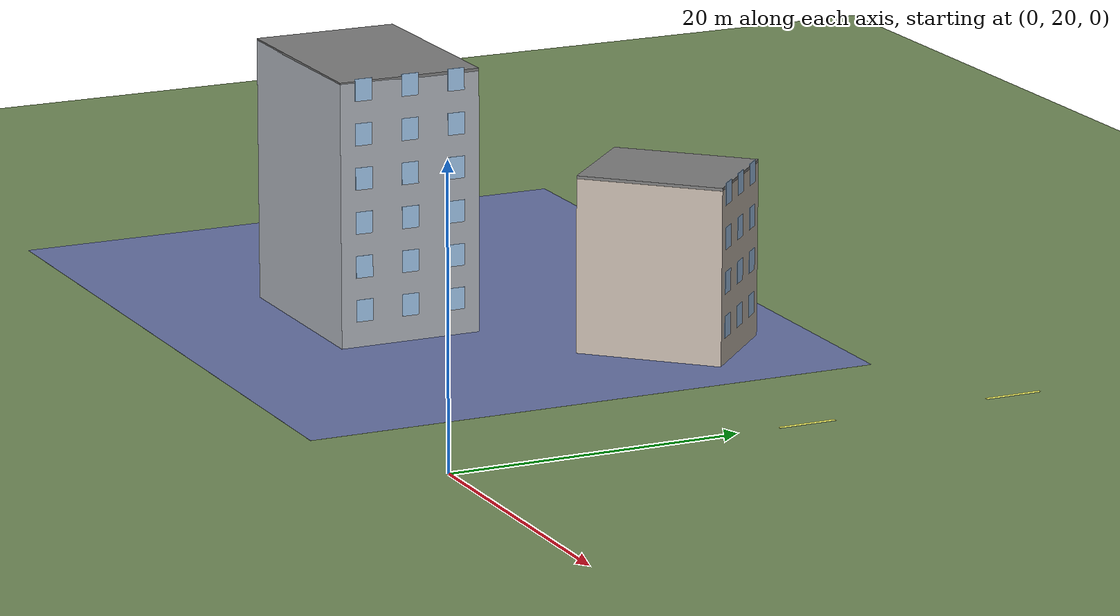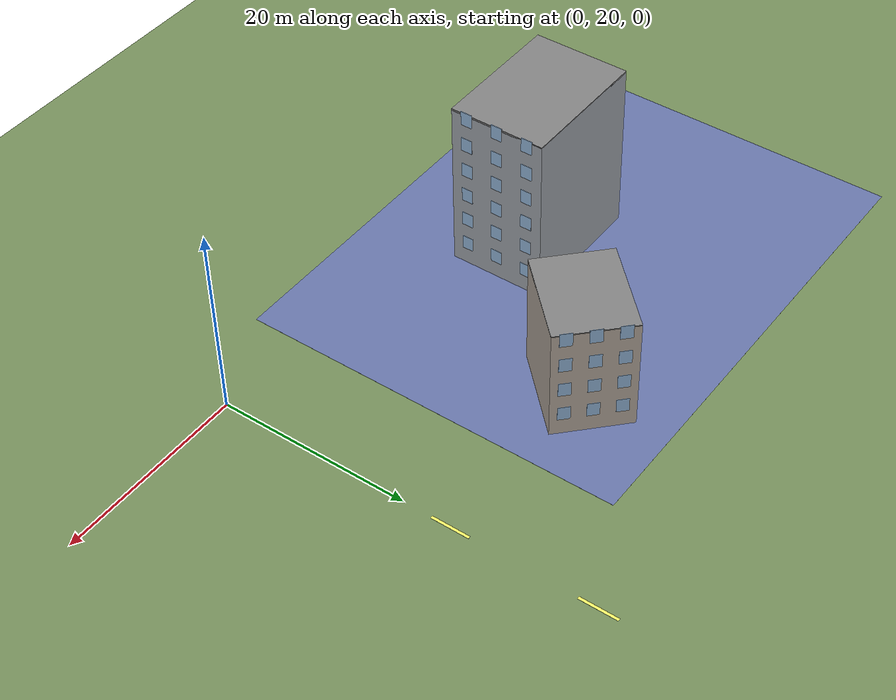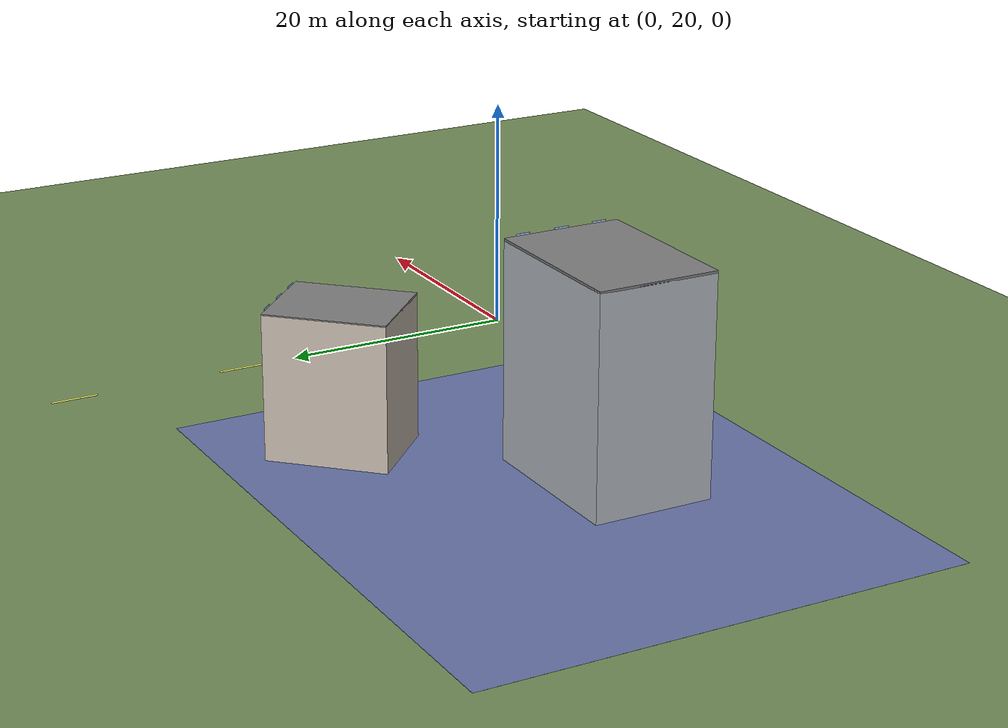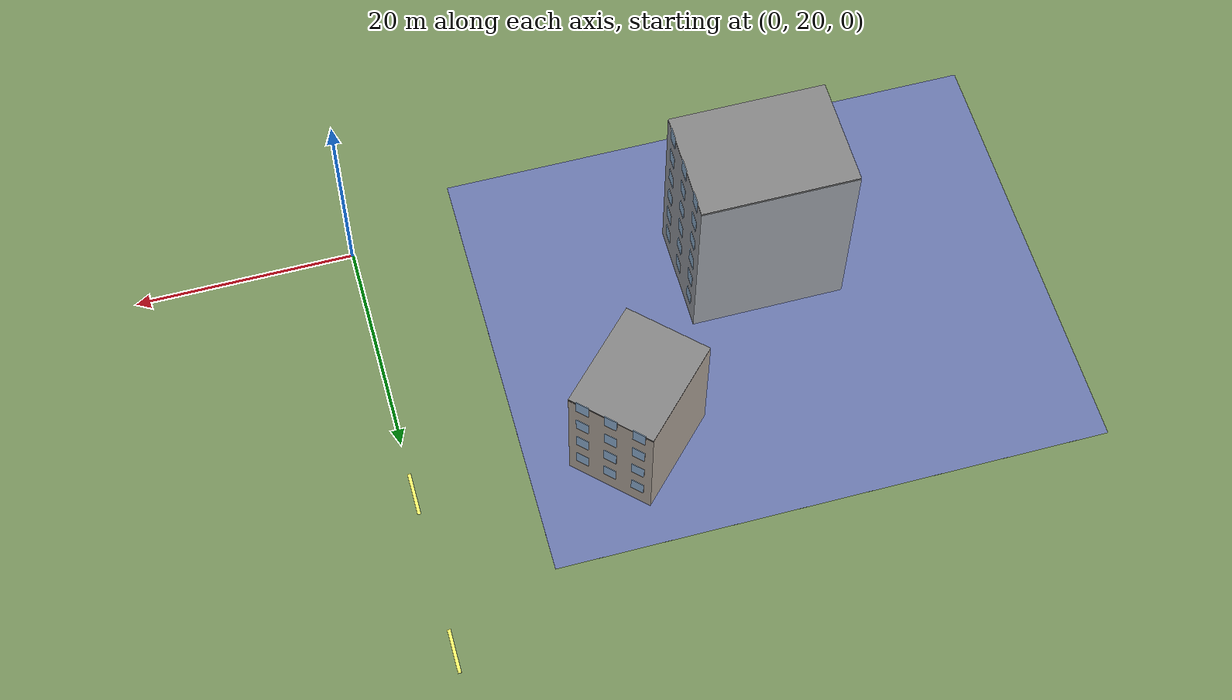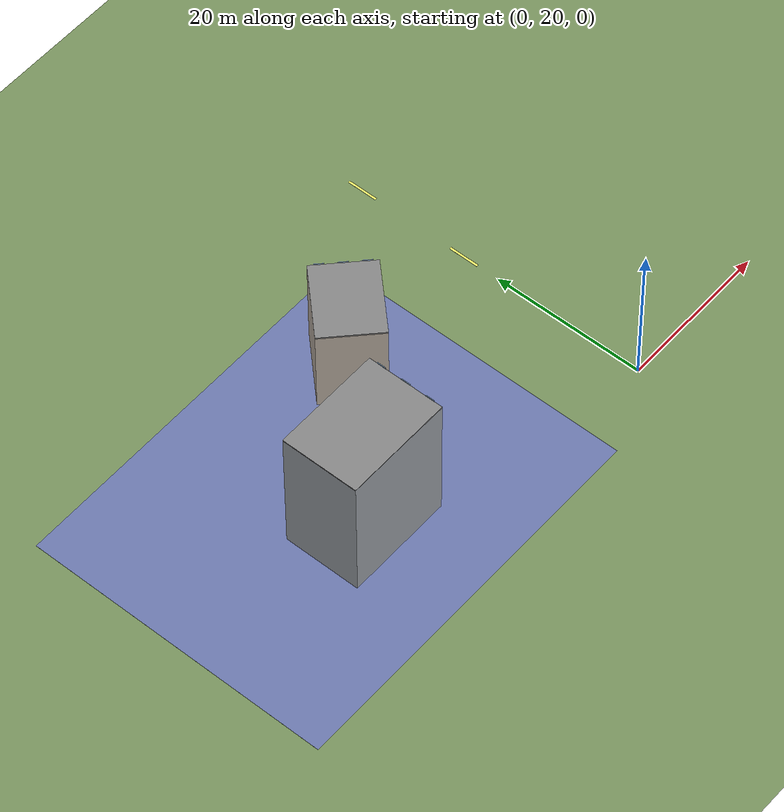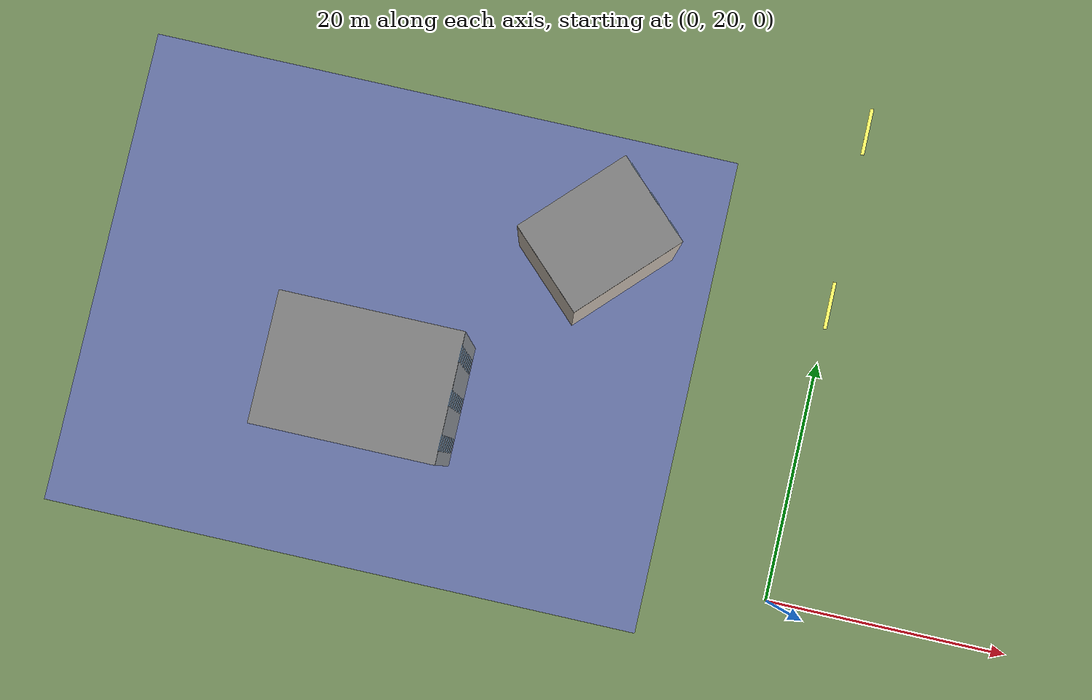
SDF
<sdf version="1.9">
 <world name="urban_rescue">
  <model name="ground">
   <static>true</static>
   <link name="l">
    <collision name="c"><geometry><plane><normal>0 0 1</normal><size>300 300</size></plane></geometry></collision>
    <visual name="v">
     <geometry><plane><normal>0 0 1</normal><size>300 300</size></plane></geometry>
     <material><ambient>0.4 0.5 0.3 1</ambient><diffuse>0.45 0.55 0.35 1</diffuse></material>
    </visual>
   </link>
  </model>
  <model name="lns8">
   <static>true</static>
   <pose>0 30 0.008 0 0 0</pose>
   <link name="l">
    <visual name="v">
     <geometry><box><size>0.3 4 0.005</size></box></geometry>
     <material>
      <ambient>0.95 0.95 0.3 1</ambient>
      <diffuse>1 1 0.4 1</diffuse>
      <specular>0.1 0.1 0.1 1</specular>
     </material>
    </visual>
   </link>
  </model>
  <model name="lns9">
   <static>true</static>
   <pose>0 45 0.008 0 0 0</pose>
   <link name="l">
    <visual name="v">
     <geometry><box><size>0.3 4 0.005</size></box></geometry>
     <material>
      <ambient>0.95 0.95 0.3 1</ambient>
      <diffuse>1 1 0.4 1</diffuse>
      <specular>0.1 0.1 0.1 1</specular>
     </material>
    </visual>
   </link>
  </model>
  <model name="lns10">
   <static>true</static>
   <pose>0 60 0.008 0 0 0</pose>
   <link name="l">
    <visual name="v">
     <geometry><box><size>0.3 4 0.005</size></box></geometry>
     <material>
      <ambient>0.95 0.95 0.3 1</ambient>
      <diffuse>1 1 0.4 1</diffuse>
      <specular>0.1 0.1 0.1 1</specular>
     </material>
    </visual>
   </link>
  </model>
  <model name="zb">
   <static>true</static>
   <pose>-35 35 0.012 0 0 0</pose>
   <link name="l">
    <visual name="v">
     <geometry><box><size>50 40 0.005</size></box></geometry>
     <material>
      <ambient>0.3 0.35 0.55 1</ambient>
      <diffuse>0.4 0.44999999999999996 0.65 1</diffuse>
      <specular>0.1 0.1 0.1 1</specular>
     </material>
    </visual>
   </link>
  </model>
  <model name="office1">
   <static>true</static>
   <pose>-35 30 0 0 0 0</pose>
   <link name="b">
    <visual name="w">
     <pose>0 0 9.0 0 0 0</pose>
     <geometry><box><size>14 10 18</size></box></geometry>
     <material>
      <ambient>0.6 0.62 0.65 1</ambient>
      <diffuse>0.7 0.72 0.75 1</diffuse>
      <specular>0.1 0.1 0.1 1</specular>
     </material>
    </visual>
    <visual name="r">
     <pose>0 0 18 0 0 0</pose>
     <geometry><box><size>14 10 0.2</size></box></geometry>
     <material>
      <ambient>0.4 0.4 0.4 1</ambient>
      <diffuse>0.5 0.5 0.5 1</diffuse>
      <specular>0.1 0.1 0.1 1</specular>
     </material>
    </visual>
    <visual name="f1w0">
     <pose>7.0 -3.3333333333333335 2.5 0 0 0</pose>
     <geometry><box><size>0.05 1.2 1.5</size></box></geometry>
     <material>
      <ambient>0.55 0.7 0.85 1</ambient>
      <diffuse>0.65 0.7999999999999999 0.95 1</diffuse>
      <specular>0.1 0.1 0.1 1</specular>
     </material>
    </visual>
    <visual name="f1w1">
     <pose>7.0 0 2.5 0 0 0</pose>
     <geometry><box><size>0.05 1.2 1.5</size></box></geometry>
     <material>
      <ambient>0.55 0.7 0.85 1</ambient>
      <diffuse>0.65 0.7999999999999999 0.95 1</diffuse>
      <specular>0.1 0.1 0.1 1</specular>
     </material>
    </visual>
    <visual name="f1w2">
     <pose>7.0 3.3333333333333335 2.5 0 0 0</pose>
     <geometry><box><size>0.05 1.2 1.5</size></box></geometry>
     <material>
      <ambient>0.55 0.7 0.85 1</ambient>
      <diffuse>0.65 0.7999999999999999 0.95 1</diffuse>
      <specular>0.1 0.1 0.1 1</specular>
     </material>
    </visual>
    <visual name="f2w0">
     <pose>7.0 -3.3333333333333335 5.5 0 0 0</pose>
     <geometry><box><size>0.05 1.2 1.5</size></box></geometry>
     <material>
      <ambient>0.55 0.7 0.85 1</ambient>
      <diffuse>0.65 0.7999999999999999 0.95 1</diffuse>
      <specular>0.1 0.1 0.1 1</specular>
     </material>
    </visual>
    <visual name="f2w1">
     <pose>7.0 0 5.5 0 0 0</pose>
     <geometry><box><size>0.05 1.2 1.5</size></box></geometry>
     <material>
      <ambient>0.55 0.7 0.85 1</ambient>
      <diffuse>0.65 0.7999999999999999 0.95 1</diffuse>
      <specular>0.1 0.1 0.1 1</specular>
     </material>
    </visual>
    <visual name="f2w2">
     <pose>7.0 3.3333333333333335 5.5 0 0 0</pose>
     <geometry><box><size>0.05 1.2 1.5</size></box></geometry>
     <material>
      <ambient>0.55 0.7 0.85 1</ambient>
      <diffuse>0.65 0.7999999999999999 0.95 1</diffuse>
      <specular>0.1 0.1 0.1 1</specular>
     </material>
    </visual>
    <visual name="f3w0">
     <pose>7.0 -3.3333333333333335 8.5 0 0 0</pose>
     <geometry><box><size>0.05 1.2 1.5</size></box></geometry>
     <material>
      <ambient>0.55 0.7 0.85 1</ambient>
      <diffuse>0.65 0.7999999999999999 0.95 1</diffuse>
      <specular>0.1 0.1 0.1 1</specular>
     </material>
    </visual>
    <visual name="f3w1">
     <pose>7.0 0 8.5 0 0 0</pose>
     <geometry><box><size>0.05 1.2 1.5</size></box></geometry>
     <material>
      <ambient>0.55 0.7 0.85 1</ambient>
      <diffuse>0.65 0.7999999999999999 0.95 1</diffuse>
      <specular>0.1 0.1 0.1 1</specular>
     </material>
    </visual>
    <visual name="f3w2">
     <pose>7.0 3.3333333333333335 8.5 0 0 0</pose>
     <geometry><box><size>0.05 1.2 1.5</size></box></geometry>
     <material>
      <ambient>0.55 0.7 0.85 1</ambient>
      <diffuse>0.65 0.7999999999999999 0.95 1</diffuse>
      <specular>0.1 0.1 0.1 1</specular>
     </material>
    </visual>
    <visual name="f4w0">
     <pose>7.0 -3.3333333333333335 11.5 0 0 0</pose>
     <geometry><box><size>0.05 1.2 1.5</size></box></geometry>
     <material>
      <ambient>0.55 0.7 0.85 1</ambient>
      <diffuse>0.65 0.7999999999999999 0.95 1</diffuse>
      <specular>0.1 0.1 0.1 1</specular>
     </material>
    </visual>
    <visual name="f4w1">
     <pose>7.0 0 11.5 0 0 0</pose>
     <geometry><box><size>0.05 1.2 1.5</size></box></geometry>
     <material>
      <ambient>0.55 0.7 0.85 1</ambient>
      <diffuse>0.65 0.7999999999999999 0.95 1</diffuse>
      <specular>0.1 0.1 0.1 1</specular>
     </material>
    </visual>
    <visual name="f4w2">
     <pose>7.0 3.3333333333333335 11.5 0 0 0</pose>
     <geometry><box><size>0.05 1.2 1.5</size></box></geometry>
     <material>
      <ambient>0.55 0.7 0.85 1</ambient>
      <diffuse>0.65 0.7999999999999999 0.95 1</diffuse>
      <specular>0.1 0.1 0.1 1</specular>
     </material>
    </visual>
    <visual name="f5w0">
     <pose>7.0 -3.3333333333333335 14.5 0 0 0</pose>
     <geometry><box><size>0.05 1.2 1.5</size></box></geometry>
     <material>
      <ambient>0.55 0.7 0.85 1</ambient>
      <diffuse>0.65 0.7999999999999999 0.95 1</diffuse>
      <specular>0.1 0.1 0.1 1</specular>
     </material>
    </visual>
    <visual name="f5w1">
     <pose>7.0 0 14.5 0 0 0</pose>
     <geometry><box><size>0.05 1.2 1.5</size></box></geometry>
     <material>
      <ambient>0.55 0.7 0.85 1</ambient>
      <diffuse>0.65 0.7999999999999999 0.95 1</diffuse>
      <specular>0.1 0.1 0.1 1</specular>
     </material>
    </visual>
    <visual name="f5w2">
     <pose>7.0 3.3333333333333335 14.5 0 0 0</pose>
     <geometry><box><size>0.05 1.2 1.5</size></box></geometry>
     <material>
      <ambient>0.55 0.7 0.85 1</ambient>
      <diffuse>0.65 0.7999999999999999 0.95 1</diffuse>
      <specular>0.1 0.1 0.1 1</specular>
     </material>
    </visual>
    <visual name="f6w0">
     <pose>7.0 -3.3333333333333335 17.5 0 0 0</pose>
     <geometry><box><size>0.05 1.2 1.5</size></box></geometry>
     <material>
      <ambient>0.55 0.7 0.85 1</ambient>
      <diffuse>0.65 0.7999999999999999 0.95 1</diffuse>
      <specular>0.1 0.1 0.1 1</specular>
     </material>
    </visual>
    <visual name="f6w1">
     <pose>7.0 0 17.5 0 0 0</pose>
     <geometry><box><size>0.05 1.2 1.5</size></box></geometry>
     <material>
      <ambient>0.55 0.7 0.85 1</ambient>
      <diffuse>0.65 0.7999999999999999 0.95 1</diffuse>
      <specular>0.1 0.1 0.1 1</specular>
     </material>
    </visual>
    <visual name="f6w2">
     <pose>7.0 3.3333333333333335 17.5 0 0 0</pose>
     <geometry><box><size>0.05 1.2 1.5</size></box></geometry>
     <material>
      <ambient>0.55 0.7 0.85 1</ambient>
      <diffuse>0.65 0.7999999999999999 0.95 1</diffuse>
      <specular>0.1 0.1 0.1 1</specular>
     </material>
    </visual>
    <collision name="c">
     <pose>0 0 9.0 0 0 0</pose>
     <geometry><box><size>14 10 18</size></box></geometry>
    </collision>
   </link>
  </model>
  <model name="apart1">
   <static>true</static>
   <pose>-20 45 0 0 0 0.8</pose>
   <link name="b">
    <visual name="w">
     <pose>0 0 6.0 0 0 0</pose>
     <geometry><box><size>10 8 12</size></box></geometry>
     <material>
      <ambient>0.7 0.65 0.6 1</ambient>
      <diffuse>0.7999999999999999 0.75 0.7 1</diffuse>
      <specular>0.1 0.1 0.1 1</specular>
     </material>
    </visual>
    <visual name="r">
     <pose>0 0 12 0 0 0</pose>
     <geometry><box><size>10 8 0.2</size></box></geometry>
     <material>
      <ambient>0.4 0.4 0.4 1</ambient>
      <diffuse>0.5 0.5 0.5 1</diffuse>
      <specular>0.1 0.1 0.1 1</specular>
     </material>
    </visual>
    <visual name="f1w0">
     <pose>5.0 -2.6666666666666665 2.5 0 0 0</pose>
     <geometry><box><size>0.05 1.2 1.5</size></box></geometry>
     <material>
      <ambient>0.55 0.7 0.85 1</ambient>
      <diffuse>0.65 0.7999999999999999 0.95 1</diffuse>
      <specular>0.1 0.1 0.1 1</specular>
     </material>
    </visual>
    <visual name="f1w1">
     <pose>5.0 0 2.5 0 0 0</pose>
     <geometry><box><size>0.05 1.2 1.5</size></box></geometry>
     <material>
      <ambient>0.55 0.7 0.85 1</ambient>
      <diffuse>0.65 0.7999999999999999 0.95 1</diffuse>
      <specular>0.1 0.1 0.1 1</specular>
     </material>
    </visual>
    <visual name="f1w2">
     <pose>5.0 2.6666666666666665 2.5 0 0 0</pose>
     <geometry><box><size>0.05 1.2 1.5</size></box></geometry>
     <material>
      <ambient>0.55 0.7 0.85 1</ambient>
      <diffuse>0.65 0.7999999999999999 0.95 1</diffuse>
      <specular>0.1 0.1 0.1 1</specular>
     </material>
    </visual>
    <visual name="f2w0">
     <pose>5.0 -2.6666666666666665 5.5 0 0 0</pose>
     <geometry><box><size>0.05 1.2 1.5</size></box></geometry>
     <material>
      <ambient>0.55 0.7 0.85 1</ambient>
      <diffuse>0.65 0.7999999999999999 0.95 1</diffuse>
      <specular>0.1 0.1 0.1 1</specular>
     </material>
    </visual>
    <visual name="f2w1">
     <pose>5.0 0 5.5 0 0 0</pose>
     <geometry><box><size>0.05 1.2 1.5</size></box></geometry>
     <material>
      <ambient>0.55 0.7 0.85 1</ambient>
      <diffuse>0.65 0.7999999999999999 0.95 1</diffuse>
      <specular>0.1 0.1 0.1 1</specular>
     </material>
    </visual>
    <visual name="f2w2">
     <pose>5.0 2.6666666666666665 5.5 0 0 0</pose>
     <geometry><box><size>0.05 1.2 1.5</size></box></geometry>
     <material>
      <ambient>0.55 0.7 0.85 1</ambient>
      <diffuse>0.65 0.7999999999999999 0.95 1</diffuse>
      <specular>0.1 0.1 0.1 1</specular>
     </material>
    </visual>
    <visual name="f3w0">
     <pose>5.0 -2.6666666666666665 8.5 0 0 0</pose>
     <geometry><box><size>0.05 1.2 1.5</size></box></geometry>
     <material>
      <ambient>0.55 0.7 0.85 1</ambient>
      <diffuse>0.65 0.7999999999999999 0.95 1</diffuse>
      <specular>0.1 0.1 0.1 1</specular>
     </material>
    </visual>
    <visual name="f3w1">
     <pose>5.0 0 8.5 0 0 0</pose>
     <geometry><box><size>0.05 1.2 1.5</size></box></geometry>
     <material>
      <ambient>0.55 0.7 0.85 1</ambient>
      <diffuse>0.65 0.7999999999999999 0.95 1</diffuse>
      <specular>0.1 0.1 0.1 1</specular>
     </material>
    </visual>
    <visual name="f3w2">
     <pose>5.0 2.6666666666666665 8.5 0 0 0</pose>
     <geometry><box><size>0.05 1.2 1.5</size></box></geometry>
     <material>
      <ambient>0.55 0.7 0.85 1</ambient>
      <diffuse>0.65 0.7999999999999999 0.95 1</diffuse>
      <specular>0.1 0.1 0.1 1</specular>
     </material>
    </visual>
    <visual name="f4w0">
     <pose>5.0 -2.6666666666666665 11.5 0 0 0</pose>
     <geometry><box><size>0.05 1.2 1.5</size></box></geometry>
     <material>
      <ambient>0.55 0.7 0.85 1</ambient>
      <diffuse>0.65 0.7999999999999999 0.95 1</diffuse>
      <specular>0.1 0.1 0.1 1</specular>
     </material>
    </visual>
    <visual name="f4w1">
     <pose>5.0 0 11.5 0 0 0</pose>
     <geometry><box><size>0.05 1.2 1.5</size></box></geometry>
     <material>
      <ambient>0.55 0.7 0.85 1</ambient>
      <diffuse>0.65 0.7999999999999999 0.95 1</diffuse>
      <specular>0.1 0.1 0.1 1</specular>
     </material>
    </visual>
    <visual name="f4w2">
     <pose>5.0 2.6666666666666665 11.5 0 0 0</pose>
     <geometry><box><size>0.05 1.2 1.5</size></box></geometry>
     <material>
      <ambient>0.55 0.7 0.85 1</ambient>
      <diffuse>0.65 0.7999999999999999 0.95 1</diffuse>
      <specular>0.1 0.1 0.1 1</specular>
     </material>
    </visual>
    <collision name="c"><pose>0 0 6.0 0 0 0</pose><geometry><box><size>10 8 12</size></box></geometry></collision>
   </link>
  </model>
 </world>
</sdf>
